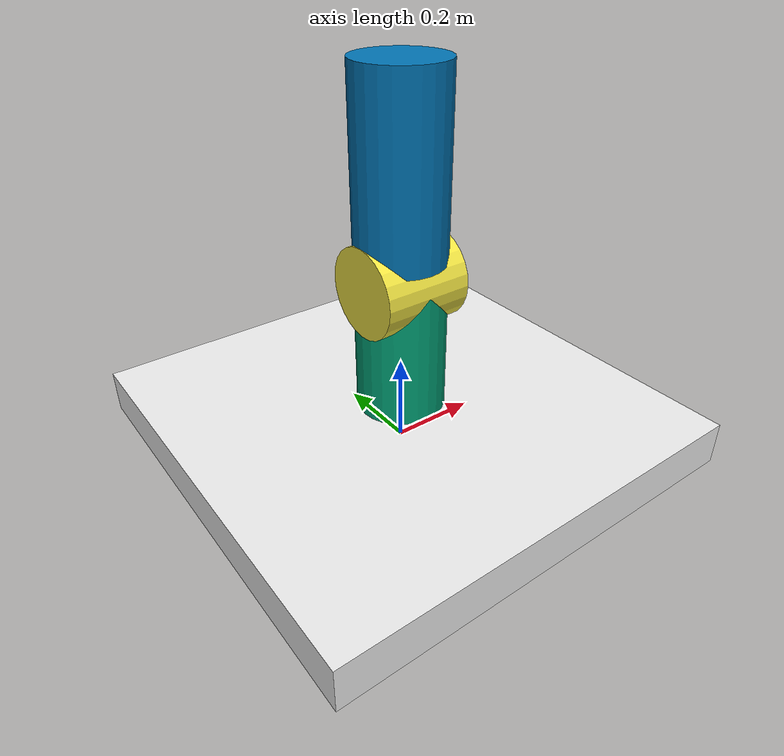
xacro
<?xml version="1.0" ?>
<robot xmlns:xacro="http://www.ros.org/wiki/xacro" name="seavstiff_world">

    <link name="world"/>

    <xacro:include filename="./stiff_3_dof.xacro" />
    <xacro:include filename="./stiff_3_dof.gazebo"/>

    <gazebo>
        <plugin name="gazebo_ros_control" filename="libgazebo_ros_control.so">
            <robotNamespace>/sea</robotNamespace>
            <robotSimType>gazebo_ros_control/DefaultRobotHWSim</robotSimType>
        </plugin>
    </gazebo>

    <gazebo>
        <plugin name="gazebo_ros_control" filename="libgazebo_ros_control.so">
            <robotNamespace>/stiff</robotNamespace>
            <robotSimType>gazebo_ros_control/DefaultRobotHWSim</robotSimType>
        </plugin>
    </gazebo>

</robot>

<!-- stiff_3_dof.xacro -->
<robot xmlns:xacro="http://www.ros.org/wiki/xacro" name="sea_demo">

    <xacro:property name="M_PI" value="3.1415926535897931" />

    <xacro:property name="MASS_1" value="0.75" />
    <xacro:property name="HEIGHT_1" value="0.1" />
    <xacro:property name="WIDTH_1" value="1" />
    <xacro:property name="BREADTH_1" value="1" />
    <xacro:property name="BASE_ORIGIN_X" value="0" />
    <xacro:property name="BASE_ORIGIN_Y" value="0" />
    <xacro:property name="BASE_ORIGIN_Z" value="${HEIGHT_1 / 2}" />

    <xacro:property name="MASS_2" value="0.10" />
    <xacro:property name="HEIGHT_2" value="0.1" />
    <xacro:property name="WIDTH_2" value="0.1" />
    <xacro:property name="BREADTH_2" value="0.1" />

    <xacro:property name="MASS_3" value="0.15" />
    <xacro:property name="RADIUS_3" value="0.15" />
    <xacro:property name="LENGTH_3" value="0.10" />

    <xacro:property name="MASS_4" value="1.0" />
    <xacro:property name="RADIUS_4" value="0.10" />
    <xacro:property name="LENGTH_4" value="0.40" />

    <xacro:property name="MASS_5" value="0.25" />
    <xacro:property name="RADIUS_5" value="0.10" />
    <xacro:property name="LENGTH_5" value="0.20" />

    <link name="base_link_rotation">
        <visual>
            <origin xyz="${BASE_ORIGIN_X} ${BASE_ORIGIN_Y} ${BASE_ORIGIN_Z}" rpy="0 0 0"/>
            <geometry>
                <box size="${WIDTH_1} ${BREADTH_1} ${HEIGHT_1}"/>
            </geometry>
        </visual>
        <collision>
            <origin xyz="${BASE_ORIGIN_X} ${BASE_ORIGIN_Y} ${BASE_ORIGIN_Z}" rpy="0 0 0"/>
            <geometry>
                <box size="${WIDTH_1} ${BREADTH_1} ${HEIGHT_1}"/>
            </geometry>
        </collision>
        <inertial>
            <origin xyz="${BASE_ORIGIN_X} ${BASE_ORIGIN_Y} ${BASE_ORIGIN_Z}" rpy="0 0 0"/>
            <mass value="${MASS_1}"/>
            <inertia ixx="${MASS_1 / 6.0 * (WIDTH_1 * WIDTH_1 + HEIGHT_1 * HEIGHT_1)}" ixy="0.0" ixz="0.0"
                     iyy="${MASS_1 / 6.0 * (HEIGHT_1 * HEIGHT_1 + WIDTH_1 * WIDTH_1)}" iyz="0.0"
                     izz="${MASS_1 / 6.0 * (WIDTH_1 * WIDTH_1 + WIDTH_1 * WIDTH_1)}"/>
        </inertial>
    </link>

    <link name="link_1_rot_out">
        <visual>
            <origin xyz="0 0 ${LENGTH_4 / 2}" rpy="0 0 0" />
            <geometry>
                <cylinder radius="${RADIUS_4}" length="${LENGTH_4}" />
            </geometry>
        </visual>
        <collision>
            <origin xyz="0 0 ${LENGTH_4 / 2}" rpy="0 0 0" />
            <geometry>
                <cylinder radius="${RADIUS_4}" length="${LENGTH_4}" />
            </geometry>
        </collision>
        <inertial>
            <origin xyz="0 0 ${LENGTH_4 / 2}" rpy="0 0 0" />
            <mass value="${MASS_2}"/>
            <inertia ixx="${((MASS_2 * (LENGTH_4 * LENGTH_4)) / 12) + (MASS_2 * (RADIUS_4 * RADIUS_4)) / 4}" ixy="0.0" ixz="0.0"
                     iyy="${((MASS_2 * (LENGTH_4 * LENGTH_4)) / 12) + (MASS_2 * (RADIUS_4 * RADIUS_4)) / 4}" iyz="0.0"
                     izz="${(MASS_2 * (RADIUS_4 * RADIUS_4)) / 2}"/>
        </inertial>
    </link>

    <link name="link_2_rot_in">
        <visual>
            <origin xyz="0 0 0" rpy="0 0 0" />
            <geometry>
                <cylinder radius="${RADIUS_5}" length="${LENGTH_5}" />
            </geometry>
        </visual>
        <collision>
            <origin xyz="0 0 0" rpy="0 0 0" />
            <geometry>
                <cylinder radius="${RADIUS_5}" length="${LENGTH_5}" />
            </geometry>
        </collision>
        <inertial>
            <origin xyz="0 0 0" rpy="0 0 0" />
            <mass value="${MASS_3}"/>
            <inertia ixx="${((MASS_3 * (LENGTH_5 * LENGTH_5)) / 12) + (MASS_3 * (RADIUS_5 * RADIUS_5)) / 4}" ixy="0.0" ixz="0.0"
                     iyy="${((MASS_3 * (LENGTH_5 * LENGTH_5)) / 12) + (MASS_3 * (RADIUS_5 * RADIUS_5)) / 4}" iyz="0.0"
                     izz="${(MASS_3 * (RADIUS_5 * RADIUS_5)) / 2}"/>
        </inertial>
    </link>

    <link name="link_2_rot_out">
        <visual>
            <origin xyz="${(LENGTH_4 / 2) + (RADIUS_5 / 2)} 0 0" rpy="0 ${M_PI / 2} 0" />
            <geometry>
                <cylinder radius="${RADIUS_4}" length="${LENGTH_4}" />
            </geometry>
        </visual>
        <collision>
            <origin xyz="${(LENGTH_4 / 2) + (RADIUS_5 / 2)} 0 0" rpy="0 ${M_PI / 2} 0" />
            <geometry>
                <cylinder radius="${RADIUS_4}" length="${LENGTH_4}" />
            </geometry>
        </collision>
        <inertial>
            <origin xyz="${(LENGTH_4 / 2) + (RADIUS_5 / 2)} 0 0" rpy="0 ${M_PI / 2} 0" />
            <mass value="${MASS_2}"/>
            <inertia ixx="${((MASS_2 * (LENGTH_4 * LENGTH_4)) / 12) + (MASS_2 * (RADIUS_4 * RADIUS_4)) / 4}" ixy="0.0" ixz="0.0"
                     iyy="${((MASS_2 * (LENGTH_4 * LENGTH_4)) / 12) + (MASS_2 * (RADIUS_4 * RADIUS_4)) / 4}" iyz="0.0"
                     izz="${(MASS_2 * (RADIUS_4 * RADIUS_4)) / 2}"/>
        </inertial>
    </link>
    <joint name="fixed_rotation" type="fixed">
        <parent link="world"/>
        <child link="base_link_rotation"/>
    </joint>

    <joint name="link_1_fixed" type="fixed">
        <parent link="base_link_rotation"/>
        <child link="link_1_rot_out"/>
    </joint>
    <joint name="link_2_motor" type="revolute">
        <parent link="link_1_rot_out" />
        <child link="link_2_rot_in" />
        <axis xyz="0 0 1" />
        <origin xyz="0 0 ${LENGTH_4}" rpy="0 -${M_PI / 2} 0"/>
        <limit effort="1000.0" lower="${-M_PI / 2}" upper="${M_PI / 2}" velocity="1.0" />
    </joint>

    <joint name="link_2_spring" type="revolute">
        <parent link="link_2_rot_in" />
        <child link="link_2_rot_out" />
        <axis xyz="0 0 1" />
        <origin xyz="0 0 0" />
        <dynamics damping="1"/>
        <limit effort="10" lower="-0.4" upper="0.4" velocity="1" />
    </joint>

    <transmission name="motor_2_tran">
        <type>transmission_interface/SimpleTransmission</type>
        <joint name="link_2_motor">
            <hardwareInterface>hardware_interface/EffortJointInterface</hardwareInterface>
        </joint>
        <actuator name="motor_2">
            <hardwareInterface>hardware_interface/EffortJointInterface</hardwareInterface>
            <mechanicalReduction>1</mechanicalReduction>
        </actuator>
    </transmission>

    <transmission name="spring_2_tran">
        <type>transmission_interface/SimpleTransmission</type>
        <joint name="link_2_spring">
            <hardwareInterface>hardware_interface/EffortJointInterface</hardwareInterface>
        </joint>
        <actuator name="spring_2">
            <hardwareInterface>hardware_interface/EffortJointInterface</hardwareInterface>
            <mechanicalReduction>1</mechanicalReduction>
        </actuator>
    </transmission>
</robot>
